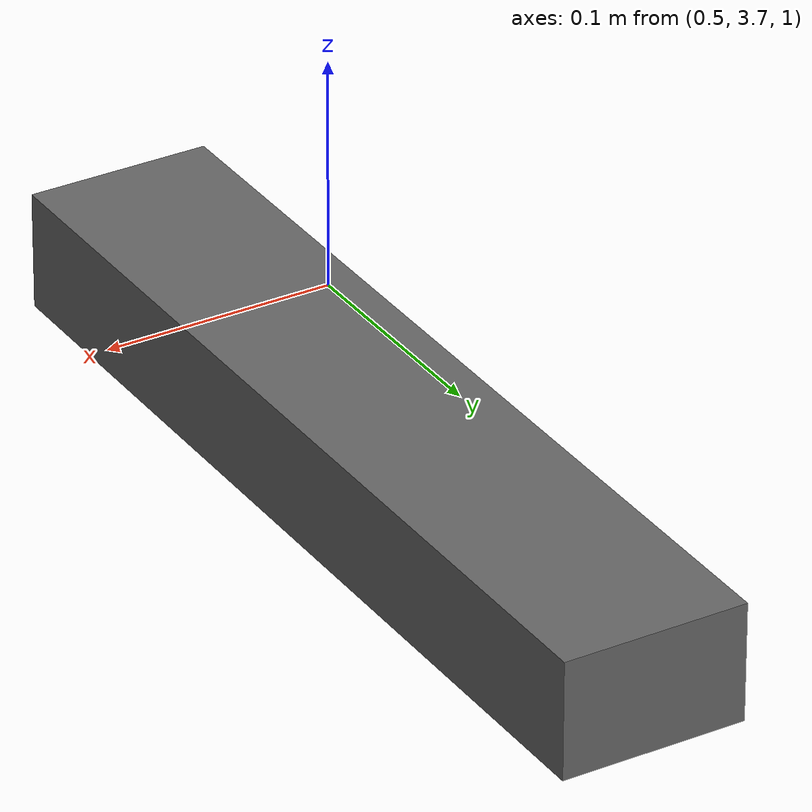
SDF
<?xml version="1.0" ?>
<!-- tmp sdf file generated from LISDF -->
<sdf version="1.9">
  <world name="tmp_world">

<model name="sink_counter_front">
  <static>True</static>
  <pose>0.5699999928474426 3.8529999256134033 1.0260000228881836 0.0 -0.0 0.0</pose>
  <link name="box">

    <inertial>
      <mass>0</mass>
      <pose>0.0 0.0 0.0 0.0 -0.0 0.0</pose>
      <inertia>
        <ixx>0</ixx>
        <ixy>0</ixy>
        <ixz>0</ixz>
        <iyy>0</iyy>
        <iyz>0</iyz>
        <izz>0</izz>
      </inertia>
    </inertial>
    <collision name="box_collision">>
      <pose>0.0 0.0 0.0 0.0 -0.0 0.0</pose>
      <geometry>
        <box>
          <size>0.07699999958276749 0.3930000066757202 0.05000000074505806</size>
        </box>
      </geometry>

    </collision>
    <visual name="box_visual">
      <pose>0.0 0.0 0.0 0.0 -0.0 0.0</pose>
      <geometry>
        <box>
          <size>0.07699999958276749 0.3930000066757202 0.05000000074505806</size>
        </box>
      </geometry>
      <material>
        <ambient>1.0 1.0 1.0 1.0</ambient>
        <diffuse>0.4000000059604645 0.4000000059604645 0.4000000059604645 1.0</diffuse>
        <specular>0.0 0.0 0.0 1.0</specular>
        <emissive>0.0 0.0 0.0 1.0</emissive>
      </material>
      <cast_shadows>True</cast_shadows>
    </visual>
    <self_collide>True</self_collide>
  </link>

</model>

  </world>
</sdf>
